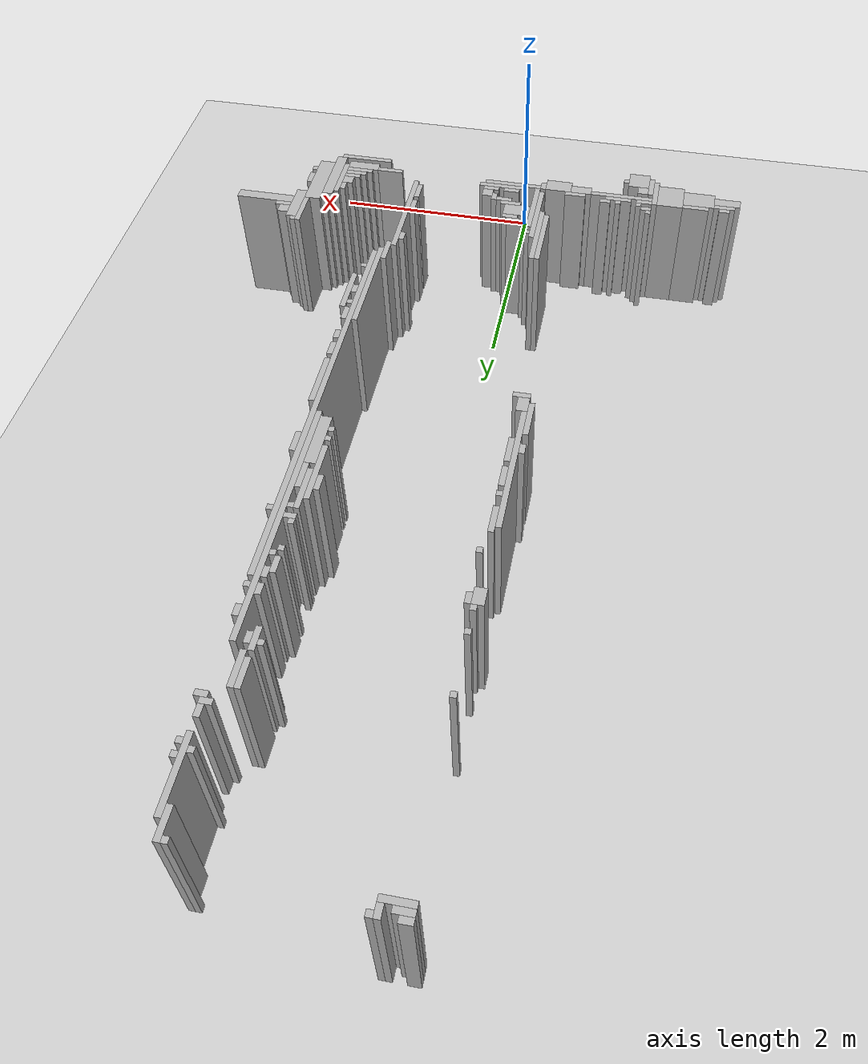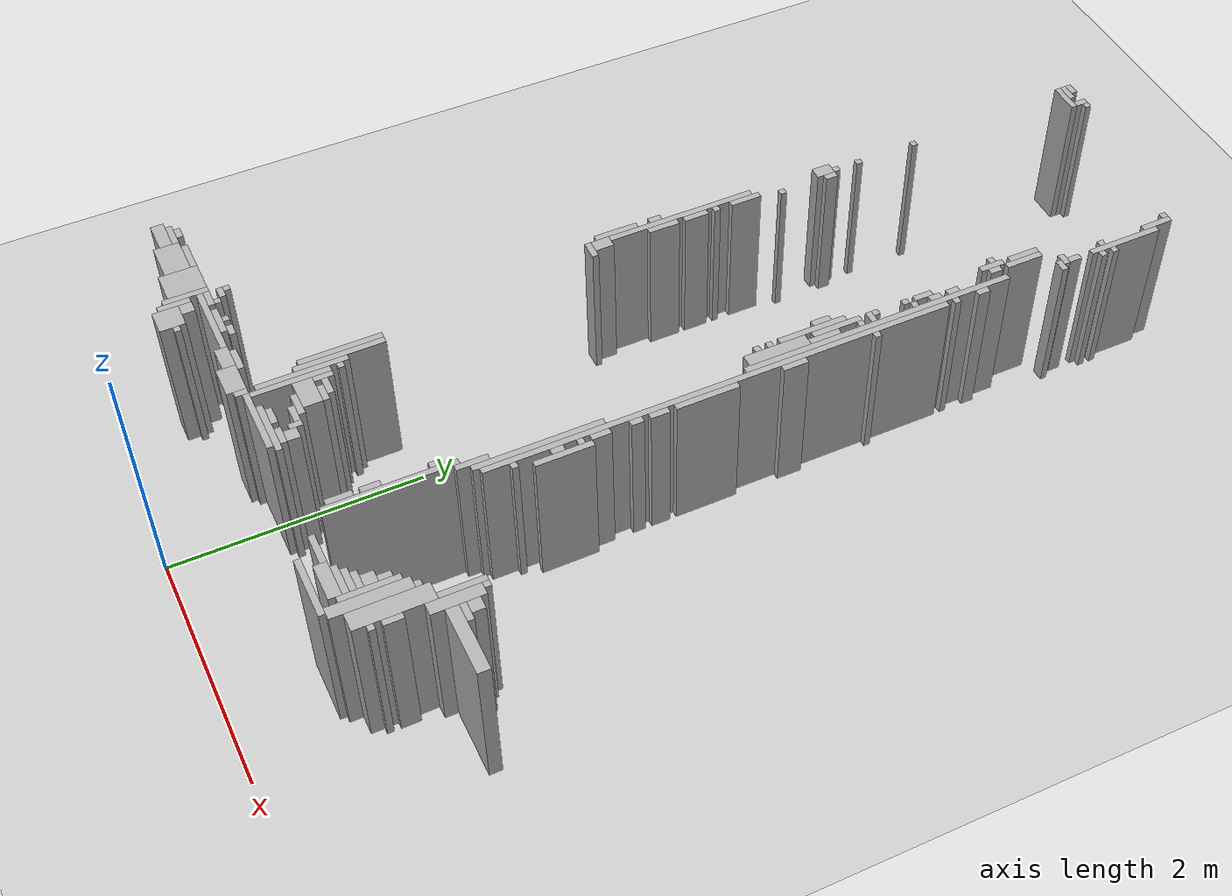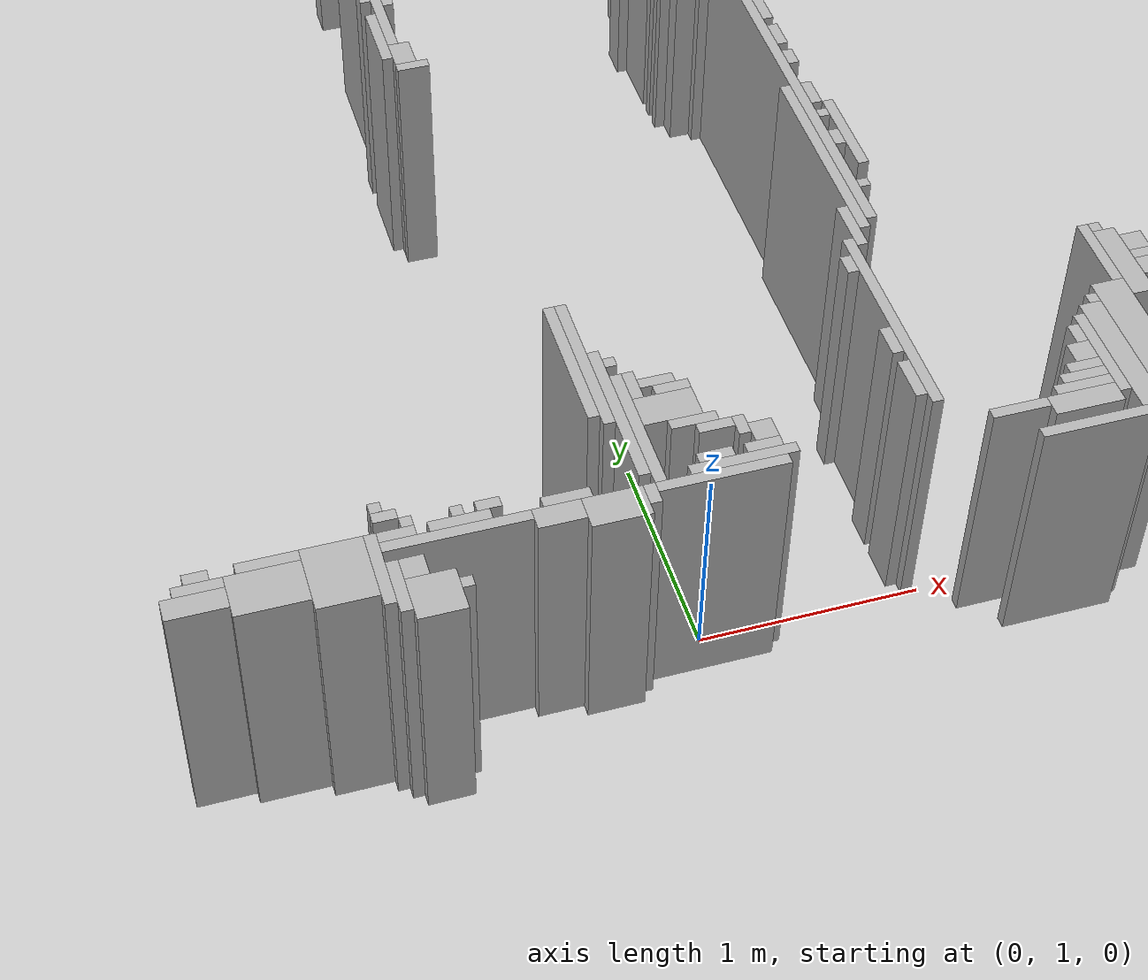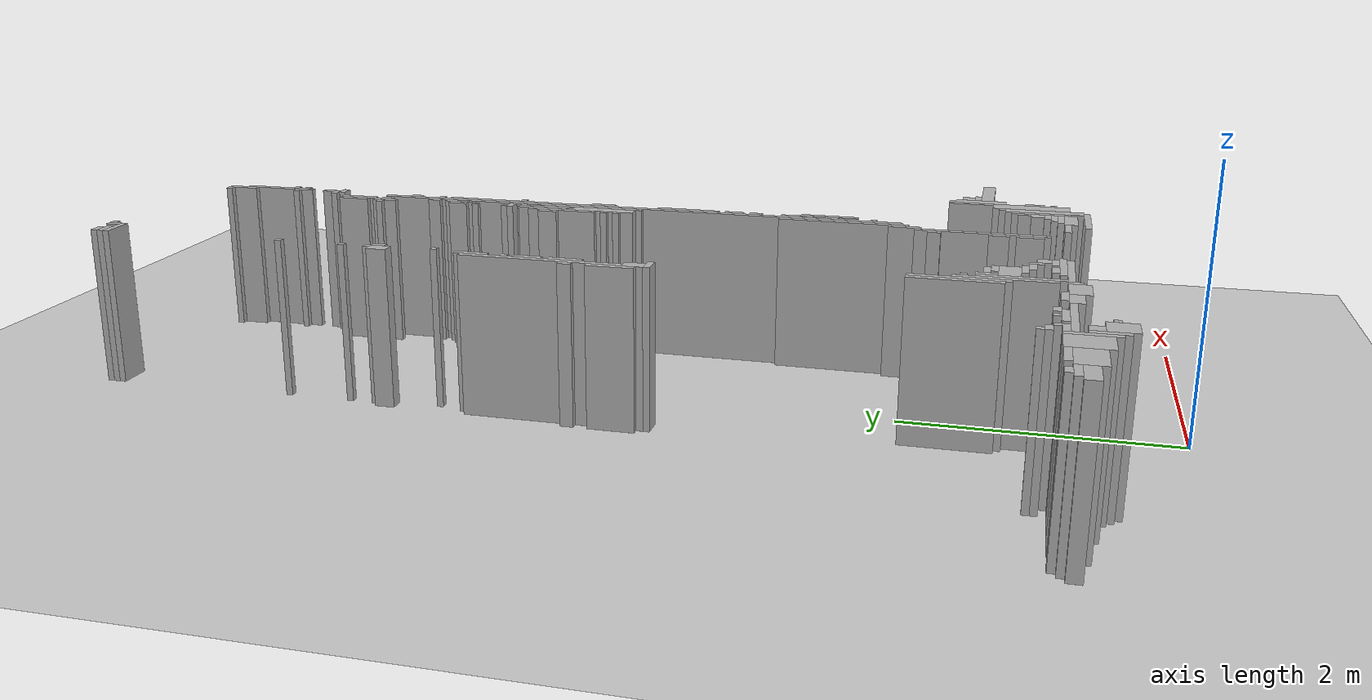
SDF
<sdf version="1.6">
 <world name="d10_floor">
  <include><uri>model://sun</uri></include>
  <include><uri>model://ground_plane</uri></include>
  <model name="d10_walls">
   <static>true</static>
   <link name="w1549">
    <pose>-1.225 0.605 0.60 0 0 0</pose>
    <collision name="c"><geometry><box><size>0.200 0.200 1.20</size></box></geometry></collision>
    <visual name="v">
     <geometry><box><size>0.200 0.200 1.20</size></box></geometry>
     <material><ambient>0.6 0.6 0.6 1</ambient><diffuse>0.7 0.7 0.7 1</diffuse></material>
    </visual>
   </link>
   <link name="w1554">
    <pose>-1.350 0.680 0.60 0 0 0</pose>
    <collision name="c"><geometry><box><size>0.050 0.250 1.20</size></box></geometry></collision>
    <visual name="v">
     <geometry><box><size>0.050 0.250 1.20</size></box></geometry>
     <material><ambient>0.6 0.6 0.6 1</ambient><diffuse>0.7 0.7 0.7 1</diffuse></material>
    </visual>
   </link>
   <link name="w1561">
    <pose>-1.400 0.780 0.60 0 0 0</pose>
    <collision name="c"><geometry><box><size>0.050 0.350 1.20</size></box></geometry></collision>
    <visual name="v">
     <geometry><box><size>0.050 0.350 1.20</size></box></geometry>
     <material><ambient>0.6 0.6 0.6 1</ambient><diffuse>0.7 0.7 0.7 1</diffuse></material>
    </visual>
   </link>
   <link name="w1562">
    <pose>-1.100 0.630 0.60 0 0 0</pose>
    <collision name="c"><geometry><box><size>0.050 0.050 1.20</size></box></geometry></collision>
    <visual name="v">
     <geometry><box><size>0.050 0.050 1.20</size></box></geometry>
     <material><ambient>0.6 0.6 0.6 1</ambient><diffuse>0.7 0.7 0.7 1</diffuse></material>
    </visual>
   </link>
   <link name="w1574">
    <pose>-1.550 0.805 0.60 0 0 0</pose>
    <collision name="c"><geometry><box><size>0.250 0.300 1.20</size></box></geometry></collision>
    <visual name="v">
     <geometry><box><size>0.250 0.300 1.20</size></box></geometry>
     <material><ambient>0.6 0.6 0.6 1</ambient><diffuse>0.7 0.7 0.7 1</diffuse></material>
    </visual>
   </link>
   <link name="w1580">
    <pose>-1.825 0.805 0.60 0 0 0</pose>
    <collision name="c"><geometry><box><size>0.300 0.200 1.20</size></box></geometry></collision>
    <visual name="v">
     <geometry><box><size>0.300 0.200 1.20</size></box></geometry>
     <material><ambient>0.6 0.6 0.6 1</ambient><diffuse>0.7 0.7 0.7 1</diffuse></material>
    </visual>
   </link>
   <link name="w1581">
    <pose>-1.275 0.755 0.60 0 0 0</pose>
    <collision name="c"><geometry><box><size>0.100 0.100 1.20</size></box></geometry></collision>
    <visual name="v">
     <geometry><box><size>0.100 0.100 1.20</size></box></geometry>
     <material><ambient>0.6 0.6 0.6 1</ambient><diffuse>0.7 0.7 0.7 1</diffuse></material>
    </visual>
   </link>
   <link name="w1582">
    <pose>1.525 0.730 0.60 0 0 0</pose>
    <collision name="c"><geometry><box><size>0.500 0.050 1.20</size></box></geometry></collision>
    <visual name="v">
     <geometry><box><size>0.500 0.050 1.20</size></box></geometry>
     <material><ambient>0.6 0.6 0.6 1</ambient><diffuse>0.7 0.7 0.7 1</diffuse></material>
    </visual>
   </link>
   <link name="w1585">
    <pose>-2.100 0.805 0.60 0 0 0</pose>
    <collision name="c"><geometry><box><size>0.250 0.100 1.20</size></box></geometry></collision>
    <visual name="v">
     <geometry><box><size>0.250 0.100 1.20</size></box></geometry>
     <material><ambient>0.6 0.6 0.6 1</ambient><diffuse>0.7 0.7 0.7 1</diffuse></material>
    </visual>
   </link>
   <link name="w1586">
    <pose>-0.450 0.830 0.60 0 0 0</pose>
    <collision name="c"><geometry><box><size>0.250 0.150 1.20</size></box></geometry></collision>
    <visual name="v">
     <geometry><box><size>0.250 0.150 1.20</size></box></geometry>
     <material><ambient>0.6 0.6 0.6 1</ambient><diffuse>0.7 0.7 0.7 1</diffuse></material>
    </visual>
   </link>
   <link name="w1587">
    <pose>1.775 1.055 0.60 0 0 0</pose>
    <collision name="c"><geometry><box><size>0.100 0.600 1.20</size></box></geometry></collision>
    <visual name="v">
     <geometry><box><size>0.100 0.600 1.20</size></box></geometry>
     <material><ambient>0.6 0.6 0.6 1</ambient><diffuse>0.7 0.7 0.7 1</diffuse></material>
    </visual>
   </link>
   <link name="w1593">
    <pose>-0.675 0.855 0.60 0 0 0</pose>
    <collision name="c"><geometry><box><size>0.200 0.100 1.20</size></box></geometry></collision>
    <visual name="v">
     <geometry><box><size>0.200 0.100 1.20</size></box></geometry>
     <material><ambient>0.6 0.6 0.6 1</ambient><diffuse>0.7 0.7 0.7 1</diffuse></material>
    </visual>
   </link>
   <link name="w1594">
    <pose>-0.300 0.855 0.60 0 0 0</pose>
    <collision name="c"><geometry><box><size>0.050 0.100 1.20</size></box></geometry></collision>
    <visual name="v">
     <geometry><box><size>0.050 0.100 1.20</size></box></geometry>
     <material><ambient>0.6 0.6 0.6 1</ambient><diffuse>0.7 0.7 0.7 1</diffuse></material>
    </visual>
   </link>
   <link name="w1595">
    <pose>1.525 0.855 0.60 0 0 0</pose>
    <collision name="c"><geometry><box><size>0.300 0.100 1.20</size></box></geometry></collision>
    <visual name="v">
     <geometry><box><size>0.300 0.100 1.20</size></box></geometry>
     <material><ambient>0.6 0.6 0.6 1</ambient><diffuse>0.7 0.7 0.7 1</diffuse></material>
    </visual>
   </link>
   <link name="w1600">
    <pose>-2.075 0.880 0.60 0 0 0</pose>
    <collision name="c"><geometry><box><size>0.200 0.050 1.20</size></box></geometry></collision>
    <visual name="v">
     <geometry><box><size>0.200 0.050 1.20</size></box></geometry>
     <material><ambient>0.6 0.6 0.6 1</ambient><diffuse>0.7 0.7 0.7 1</diffuse></material>
    </visual>
   </link>
   <link name="w1601">
    <pose>-1.075 0.880 0.60 0 0 0</pose>
    <collision name="c"><geometry><box><size>0.600 0.050 1.20</size></box></geometry></collision>
    <visual name="v">
     <geometry><box><size>0.600 0.050 1.20</size></box></geometry>
     <material><ambient>0.6 0.6 0.6 1</ambient><diffuse>0.7 0.7 0.7 1</diffuse></material>
    </visual>
   </link>
   <link name="w1602">
    <pose>0.000 0.880 0.60 0 0 0</pose>
    <collision name="c"><geometry><box><size>0.550 0.050 1.20</size></box></geometry></collision>
    <visual name="v">
     <geometry><box><size>0.550 0.050 1.20</size></box></geometry>
     <material><ambient>0.6 0.6 0.6 1</ambient><diffuse>0.7 0.7 0.7 1</diffuse></material>
    </visual>
   </link>
   <link name="w1603">
    <pose>1.250 0.880 0.60 0 0 0</pose>
    <collision name="c"><geometry><box><size>0.250 0.050 1.20</size></box></geometry></collision>
    <visual name="v">
     <geometry><box><size>0.250 0.050 1.20</size></box></geometry>
     <material><ambient>0.6 0.6 0.6 1</ambient><diffuse>0.7 0.7 0.7 1</diffuse></material>
    </visual>
   </link>
   <link name="w1604">
    <pose>1.700 1.080 0.60 0 0 0</pose>
    <collision name="c"><geometry><box><size>0.050 0.450 1.20</size></box></geometry></collision>
    <visual name="v">
     <geometry><box><size>0.050 0.450 1.20</size></box></geometry>
     <material><ambient>0.6 0.6 0.6 1</ambient><diffuse>0.7 0.7 0.7 1</diffuse></material>
    </visual>
   </link>
   <link name="w1605">
    <pose>1.900 1.155 0.60 0 0 0</pose>
    <collision name="c"><geometry><box><size>0.150 0.600 1.20</size></box></geometry></collision>
    <visual name="v">
     <geometry><box><size>0.150 0.600 1.20</size></box></geometry>
     <material><ambient>0.6 0.6 0.6 1</ambient><diffuse>0.7 0.7 0.7 1</diffuse></material>
    </visual>
   </link>
   <link name="w1610">
    <pose>-2.075 0.930 0.60 0 0 0</pose>
    <collision name="c"><geometry><box><size>0.100 0.050 1.20</size></box></geometry></collision>
    <visual name="v">
     <geometry><box><size>0.100 0.050 1.20</size></box></geometry>
     <material><ambient>0.6 0.6 0.6 1</ambient><diffuse>0.7 0.7 0.7 1</diffuse></material>
    </visual>
   </link>
   <link name="w1611">
    <pose>-1.800 0.930 0.60 0 0 0</pose>
    <collision name="c"><geometry><box><size>0.250 0.050 1.20</size></box></geometry></collision>
    <visual name="v">
     <geometry><box><size>0.250 0.050 1.20</size></box></geometry>
     <material><ambient>0.6 0.6 0.6 1</ambient><diffuse>0.7 0.7 0.7 1</diffuse></material>
    </visual>
   </link>
   <link name="w1612">
    <pose>-1.300 0.930 0.60 0 0 0</pose>
    <collision name="c"><geometry><box><size>0.150 0.050 1.20</size></box></geometry></collision>
    <visual name="v">
     <geometry><box><size>0.150 0.050 1.20</size></box></geometry>
     <material><ambient>0.6 0.6 0.6 1</ambient><diffuse>0.7 0.7 0.7 1</diffuse></material>
    </visual>
   </link>
   <link name="w1613">
    <pose>-1.050 0.930 0.60 0 0 0</pose>
    <collision name="c"><geometry><box><size>0.250 0.050 1.20</size></box></geometry></collision>
    <visual name="v">
     <geometry><box><size>0.250 0.050 1.20</size></box></geometry>
     <material><ambient>0.6 0.6 0.6 1</ambient><diffuse>0.7 0.7 0.7 1</diffuse></material>
    </visual>
   </link>
   <link name="w1614">
    <pose>-0.625 0.930 0.60 0 0 0</pose>
    <collision name="c"><geometry><box><size>0.200 0.050 1.20</size></box></geometry></collision>
    <visual name="v">
     <geometry><box><size>0.200 0.050 1.20</size></box></geometry>
     <material><ambient>0.6 0.6 0.6 1</ambient><diffuse>0.7 0.7 0.7 1</diffuse></material>
    </visual>
   </link>
   <link name="w1615">
    <pose>-0.250 1.205 0.60 0 0 0</pose>
    <collision name="c"><geometry><box><size>0.050 0.600 1.20</size></box></geometry></collision>
    <visual name="v">
     <geometry><box><size>0.050 0.600 1.20</size></box></geometry>
     <material><ambient>0.6 0.6 0.6 1</ambient><diffuse>0.7 0.7 0.7 1</diffuse></material>
    </visual>
   </link>
   <link name="w1616">
    <pose>0.100 0.930 0.60 0 0 0</pose>
    <collision name="c"><geometry><box><size>0.450 0.050 1.20</size></box></geometry></collision>
    <visual name="v">
     <geometry><box><size>0.450 0.050 1.20</size></box></geometry>
     <material><ambient>0.6 0.6 0.6 1</ambient><diffuse>0.7 0.7 0.7 1</diffuse></material>
    </visual>
   </link>
   <link name="w1617">
    <pose>1.550 0.930 0.60 0 0 0</pose>
    <collision name="c"><geometry><box><size>0.250 0.050 1.20</size></box></geometry></collision>
    <visual name="v">
     <geometry><box><size>0.250 0.050 1.20</size></box></geometry>
     <material><ambient>0.6 0.6 0.6 1</ambient><diffuse>0.7 0.7 0.7 1</diffuse></material>
    </visual>
   </link>
   <link name="w1622">
    <pose>-1.250 0.980 0.60 0 0 0</pose>
    <collision name="c"><geometry><box><size>0.050 0.050 1.20</size></box></geometry></collision>
    <visual name="v">
     <geometry><box><size>0.050 0.050 1.20</size></box></geometry>
     <material><ambient>0.6 0.6 0.6 1</ambient><diffuse>0.7 0.7 0.7 1</diffuse></material>
    </visual>
   </link>
   <link name="w1623">
    <pose>-1.050 0.980 0.60 0 0 0</pose>
    <collision name="c"><geometry><box><size>0.050 0.050 1.20</size></box></geometry></collision>
    <visual name="v">
     <geometry><box><size>0.050 0.050 1.20</size></box></geometry>
     <material><ambient>0.6 0.6 0.6 1</ambient><diffuse>0.7 0.7 0.7 1</diffuse></material>
    </visual>
   </link>
   <link name="w1624">
    <pose>-0.925 0.980 0.60 0 0 0</pose>
    <collision name="c"><geometry><box><size>0.100 0.050 1.20</size></box></geometry></collision>
    <visual name="v">
     <geometry><box><size>0.100 0.050 1.20</size></box></geometry>
     <material><ambient>0.6 0.6 0.6 1</ambient><diffuse>0.7 0.7 0.7 1</diffuse></material>
    </visual>
   </link>
   <link name="w1625">
    <pose>-0.300 1.305 0.60 0 0 0</pose>
    <collision name="c"><geometry><box><size>0.050 0.700 1.20</size></box></geometry></collision>
    <visual name="v">
     <geometry><box><size>0.050 0.700 1.20</size></box></geometry>
     <material><ambient>0.6 0.6 0.6 1</ambient><diffuse>0.7 0.7 0.7 1</diffuse></material>
    </visual>
   </link>
   <link name="w1626">
    <pose>0.000 0.980 0.60 0 0 0</pose>
    <collision name="c"><geometry><box><size>0.150 0.050 1.20</size></box></geometry></collision>
    <visual name="v">
     <geometry><box><size>0.150 0.050 1.20</size></box></geometry>
     <material><ambient>0.6 0.6 0.6 1</ambient><diffuse>0.7 0.7 0.7 1</diffuse></material>
    </visual>
   </link>
   <link name="w1627">
    <pose>0.200 0.980 0.60 0 0 0</pose>
    <collision name="c"><geometry><box><size>0.150 0.050 1.20</size></box></geometry></collision>
    <visual name="v">
     <geometry><box><size>0.150 0.050 1.20</size></box></geometry>
     <material><ambient>0.6 0.6 0.6 1</ambient><diffuse>0.7 0.7 0.7 1</diffuse></material>
    </visual>
   </link>
   <link name="w1628">
    <pose>1.575 0.980 0.60 0 0 0</pose>
    <collision name="c"><geometry><box><size>0.200 0.050 1.20</size></box></geometry></collision>
    <visual name="v">
     <geometry><box><size>0.200 0.050 1.20</size></box></geometry>
     <material><ambient>0.6 0.6 0.6 1</ambient><diffuse>0.7 0.7 0.7 1</diffuse></material>
    </visual>
   </link>
   <link name="w1629">
    <pose>2.000 0.980 0.60 0 0 0</pose>
    <collision name="c"><geometry><box><size>0.050 0.050 1.20</size></box></geometry></collision>
    <visual name="v">
     <geometry><box><size>0.050 0.050 1.20</size></box></geometry>
     <material><ambient>0.6 0.6 0.6 1</ambient><diffuse>0.7 0.7 0.7 1</diffuse></material>
    </visual>
   </link>
   <link name="w1636">
    <pose>-1.325 1.030 0.60 0 0 0</pose>
    <collision name="c"><geometry><box><size>0.100 0.050 1.20</size></box></geometry></collision>
    <visual name="v">
     <geometry><box><size>0.100 0.050 1.20</size></box></geometry>
     <material><ambient>0.6 0.6 0.6 1</ambient><diffuse>0.7 0.7 0.7 1</diffuse></material>
    </visual>
   </link>
   <link name="w1637">
    <pose>0.225 1.055 0.60 0 0 0</pose>
    <collision name="c"><geometry><box><size>0.100 0.100 1.20</size></box></geometry></collision>
    <visual name="v">
     <geometry><box><size>0.100 0.100 1.20</size></box></geometry>
     <material><ambient>0.6 0.6 0.6 1</ambient><diffuse>0.7 0.7 0.7 1</diffuse></material>
    </visual>
   </link>
   <link name="w1638">
    <pose>0.950 1.505 0.60 0 0 0</pose>
    <collision name="c"><geometry><box><size>0.050 1.000 1.20</size></box></geometry></collision>
    <visual name="v">
     <geometry><box><size>0.050 1.000 1.20</size></box></geometry>
     <material><ambient>0.6 0.6 0.6 1</ambient><diffuse>0.7 0.7 0.7 1</diffuse></material>
    </visual>
   </link>
   <link name="w1639">
    <pose>1.600 1.030 0.60 0 0 0</pose>
    <collision name="c"><geometry><box><size>0.150 0.050 1.20</size></box></geometry></collision>
    <visual name="v">
     <geometry><box><size>0.150 0.050 1.20</size></box></geometry>
     <material><ambient>0.6 0.6 0.6 1</ambient><diffuse>0.7 0.7 0.7 1</diffuse></material>
    </visual>
   </link>
   <link name="w1647">
    <pose>-1.350 1.080 0.60 0 0 0</pose>
    <collision name="c"><geometry><box><size>0.050 0.050 1.20</size></box></geometry></collision>
    <visual name="v">
     <geometry><box><size>0.050 0.050 1.20</size></box></geometry>
     <material><ambient>0.6 0.6 0.6 1</ambient><diffuse>0.7 0.7 0.7 1</diffuse></material>
    </visual>
   </link>
   <link name="w1648">
    <pose>0.150 1.105 0.60 0 0 0</pose>
    <collision name="c"><geometry><box><size>0.050 0.100 1.20</size></box></geometry></collision>
    <visual name="v">
     <geometry><box><size>0.050 0.100 1.20</size></box></geometry>
     <material><ambient>0.6 0.6 0.6 1</ambient><diffuse>0.7 0.7 0.7 1</diffuse></material>
    </visual>
   </link>
   <link name="w1649">
    <pose>0.900 1.155 0.60 0 0 0</pose>
    <collision name="c"><geometry><box><size>0.050 0.200 1.20</size></box></geometry></collision>
    <visual name="v">
     <geometry><box><size>0.050 0.200 1.20</size></box></geometry>
     <material><ambient>0.6 0.6 0.6 1</ambient><diffuse>0.7 0.7 0.7 1</diffuse></material>
    </visual>
   </link>
   <link name="w1650">
    <pose>1.625 1.105 0.60 0 0 0</pose>
    <collision name="c"><geometry><box><size>0.100 0.100 1.20</size></box></geometry></collision>
    <visual name="v">
     <geometry><box><size>0.100 0.100 1.20</size></box></geometry>
     <material><ambient>0.6 0.6 0.6 1</ambient><diffuse>0.7 0.7 0.7 1</diffuse></material>
    </visual>
   </link>
   <link name="w1651">
    <pose>2.000 1.130 0.60 0 0 0</pose>
    <collision name="c"><geometry><box><size>0.050 0.150 1.20</size></box></geometry></collision>
    <visual name="v">
     <geometry><box><size>0.050 0.150 1.20</size></box></geometry>
     <material><ambient>0.6 0.6 0.6 1</ambient><diffuse>0.7 0.7 0.7 1</diffuse></material>
    </visual>
   </link>
   <link name="w1659">
    <pose>0.050 1.130 0.60 0 0 0</pose>
    <collision name="c"><geometry><box><size>0.150 0.050 1.20</size></box></geometry></collision>
    <visual name="v">
     <geometry><box><size>0.150 0.050 1.20</size></box></geometry>
     <material><ambient>0.6 0.6 0.6 1</ambient><diffuse>0.7 0.7 0.7 1</diffuse></material>
    </visual>
   </link>
   <link name="w1669">
    <pose>-0.025 1.180 0.60 0 0 0</pose>
    <collision name="c"><geometry><box><size>0.200 0.050 1.20</size></box></geometry></collision>
    <visual name="v">
     <geometry><box><size>0.200 0.050 1.20</size></box></geometry>
     <material><ambient>0.6 0.6 0.6 1</ambient><diffuse>0.7 0.7 0.7 1</diffuse></material>
    </visual>
   </link>
   <link name="w1670">
    <pose>1.650 1.205 0.60 0 0 0</pose>
    <collision name="c"><geometry><box><size>0.050 0.100 1.20</size></box></geometry></collision>
    <visual name="v">
     <geometry><box><size>0.050 0.100 1.20</size></box></geometry>
     <material><ambient>0.6 0.6 0.6 1</ambient><diffuse>0.7 0.7 0.7 1</diffuse></material>
    </visual>
   </link>
   <link name="w1683">
    <pose>-0.100 1.280 0.60 0 0 0</pose>
    <collision name="c"><geometry><box><size>0.250 0.150 1.20</size></box></geometry></collision>
    <visual name="v">
     <geometry><box><size>0.250 0.150 1.20</size></box></geometry>
     <material><ambient>0.6 0.6 0.6 1</ambient><diffuse>0.7 0.7 0.7 1</diffuse></material>
    </visual>
   </link>
   <link name="w1693">
    <pose>-0.350 1.605 0.60 0 0 0</pose>
    <collision name="c"><geometry><box><size>0.050 0.700 1.20</size></box></geometry></collision>
    <visual name="v">
     <geometry><box><size>0.050 0.700 1.20</size></box></geometry>
     <material><ambient>0.6 0.6 0.6 1</ambient><diffuse>0.7 0.7 0.7 1</diffuse></material>
    </visual>
   </link>
   <link name="w1710">
    <pose>-0.400 1.630 0.60 0 0 0</pose>
    <collision name="c"><geometry><box><size>0.050 0.650 1.20</size></box></geometry></collision>
    <visual name="v">
     <geometry><box><size>0.050 0.650 1.20</size></box></geometry>
     <material><ambient>0.6 0.6 0.6 1</ambient><diffuse>0.7 0.7 0.7 1</diffuse></material>
    </visual>
   </link>
   <link name="w1711">
    <pose>0.900 1.380 0.60 0 0 0</pose>
    <collision name="c"><geometry><box><size>0.050 0.150 1.20</size></box></geometry></collision>
    <visual name="v">
     <geometry><box><size>0.050 0.150 1.20</size></box></geometry>
     <material><ambient>0.6 0.6 0.6 1</ambient><diffuse>0.7 0.7 0.7 1</diffuse></material>
    </visual>
   </link>
   <link name="w1723">
    <pose>-0.200 1.430 0.60 0 0 0</pose>
    <collision name="c"><geometry><box><size>0.050 0.150 1.20</size></box></geometry></collision>
    <visual name="v">
     <geometry><box><size>0.050 0.150 1.20</size></box></geometry>
     <material><ambient>0.6 0.6 0.6 1</ambient><diffuse>0.7 0.7 0.7 1</diffuse></material>
    </visual>
   </link>
   <link name="w1724">
    <pose>-0.050 1.380 0.60 0 0 0</pose>
    <collision name="c"><geometry><box><size>0.150 0.050 1.20</size></box></geometry></collision>
    <visual name="v">
     <geometry><box><size>0.150 0.050 1.20</size></box></geometry>
     <material><ambient>0.6 0.6 0.6 1</ambient><diffuse>0.7 0.7 0.7 1</diffuse></material>
    </visual>
   </link>
   <link name="w1725">
    <pose>1.800 1.380 0.60 0 0 0</pose>
    <collision name="c"><geometry><box><size>0.050 0.050 1.20</size></box></geometry></collision>
    <visual name="v">
     <geometry><box><size>0.050 0.050 1.20</size></box></geometry>
     <material><ambient>0.6 0.6 0.6 1</ambient><diffuse>0.7 0.7 0.7 1</diffuse></material>
    </visual>
   </link>
   <link name="w1726">
    <pose>2.025 1.555 0.60 0 0 0</pose>
    <collision name="c"><geometry><box><size>0.100 0.400 1.20</size></box></geometry></collision>
    <visual name="v">
     <geometry><box><size>0.100 0.400 1.20</size></box></geometry>
     <material><ambient>0.6 0.6 0.6 1</ambient><diffuse>0.7 0.7 0.7 1</diffuse></material>
    </visual>
   </link>
   <link name="w1733">
    <pose>-0.100 1.430 0.60 0 0 0</pose>
    <collision name="c"><geometry><box><size>0.150 0.050 1.20</size></box></geometry></collision>
    <visual name="v">
     <geometry><box><size>0.150 0.050 1.20</size></box></geometry>
     <material><ambient>0.6 0.6 0.6 1</ambient><diffuse>0.7 0.7 0.7 1</diffuse></material>
    </visual>
   </link>
   <link name="w1750">
    <pose>1.950 1.630 0.60 0 0 0</pose>
    <collision name="c"><geometry><box><size>0.050 0.350 1.20</size></box></geometry></collision>
    <visual name="v">
     <geometry><box><size>0.050 0.350 1.20</size></box></geometry>
     <material><ambient>0.6 0.6 0.6 1</ambient><diffuse>0.7 0.7 0.7 1</diffuse></material>
    </visual>
   </link>
   <link name="w1751">
    <pose>2.350 1.505 0.60 0 0 0</pose>
    <collision name="c"><geometry><box><size>0.550 0.100 1.20</size></box></geometry></collision>
    <visual name="v">
     <geometry><box><size>0.550 0.100 1.20</size></box></geometry>
     <material><ambient>0.6 0.6 0.6 1</ambient><diffuse>0.7 0.7 0.7 1</diffuse></material>
    </visual>
   </link>
   <link name="w1787">
    <pose>-0.250 1.580 0.60 0 0 0</pose>
    <collision name="c"><geometry><box><size>0.050 0.050 1.20</size></box></geometry></collision>
    <visual name="v">
     <geometry><box><size>0.050 0.050 1.20</size></box></geometry>
     <material><ambient>0.6 0.6 0.6 1</ambient><diffuse>0.7 0.7 0.7 1</diffuse></material>
    </visual>
   </link>
   <link name="w1788">
    <pose>2.150 1.580 0.60 0 0 0</pose>
    <collision name="c"><geometry><box><size>0.150 0.050 1.20</size></box></geometry></collision>
    <visual name="v">
     <geometry><box><size>0.150 0.050 1.20</size></box></geometry>
     <material><ambient>0.6 0.6 0.6 1</ambient><diffuse>0.7 0.7 0.7 1</diffuse></material>
    </visual>
   </link>
   <link name="w1798">
    <pose>2.125 1.655 0.60 0 0 0</pose>
    <collision name="c"><geometry><box><size>0.100 0.100 1.20</size></box></geometry></collision>
    <visual name="v">
     <geometry><box><size>0.100 0.100 1.20</size></box></geometry>
     <material><ambient>0.6 0.6 0.6 1</ambient><diffuse>0.7 0.7 0.7 1</diffuse></material>
    </visual>
   </link>
   <link name="w1819">
    <pose>2.000 1.780 0.60 0 0 0</pose>
    <collision name="c"><geometry><box><size>0.050 0.050 1.20</size></box></geometry></collision>
    <visual name="v">
     <geometry><box><size>0.050 0.050 1.20</size></box></geometry>
     <material><ambient>0.6 0.6 0.6 1</ambient><diffuse>0.7 0.7 0.7 1</diffuse></material>
    </visual>
   </link>
   <link name="w1823">
    <pose>0.900 1.855 0.60 0 0 0</pose>
    <collision name="c"><geometry><box><size>0.050 0.100 1.20</size></box></geometry></collision>
    <visual name="v">
     <geometry><box><size>0.050 0.100 1.20</size></box></geometry>
     <material><ambient>0.6 0.6 0.6 1</ambient><diffuse>0.7 0.7 0.7 1</diffuse></material>
    </visual>
   </link>
   <link name="w1840">
    <pose>1.000 2.080 0.60 0 0 0</pose>
    <collision name="c"><geometry><box><size>0.050 0.250 1.20</size></box></geometry></collision>
    <visual name="v">
     <geometry><box><size>0.050 0.250 1.20</size></box></geometry>
     <material><ambient>0.6 0.6 0.6 1</ambient><diffuse>0.7 0.7 0.7 1</diffuse></material>
    </visual>
   </link>
   <link name="w1853">
    <pose>1.050 2.555 0.60 0 0 0</pose>
    <collision name="c"><geometry><box><size>0.050 1.000 1.20</size></box></geometry></collision>
    <visual name="v">
     <geometry><box><size>0.050 1.000 1.20</size></box></geometry>
     <material><ambient>0.6 0.6 0.6 1</ambient><diffuse>0.7 0.7 0.7 1</diffuse></material>
    </visual>
   </link>
   <link name="w1859">
    <pose>1.100 3.955 0.60 0 0 0</pose>
    <collision name="c"><geometry><box><size>0.050 3.700 1.20</size></box></geometry></collision>
    <visual name="v">
     <geometry><box><size>0.050 3.700 1.20</size></box></geometry>
     <material><ambient>0.6 0.6 0.6 1</ambient><diffuse>0.7 0.7 0.7 1</diffuse></material>
    </visual>
   </link>
   <link name="w1871">
    <pose>1.150 2.330 0.60 0 0 0</pose>
    <collision name="c"><geometry><box><size>0.050 0.050 1.20</size></box></geometry></collision>
    <visual name="v">
     <geometry><box><size>0.050 0.050 1.20</size></box></geometry>
     <material><ambient>0.6 0.6 0.6 1</ambient><diffuse>0.7 0.7 0.7 1</diffuse></material>
    </visual>
   </link>
   <link name="w1876">
    <pose>1.200 2.680 0.60 0 0 0</pose>
    <collision name="c"><geometry><box><size>0.050 0.450 1.20</size></box></geometry></collision>
    <visual name="v">
     <geometry><box><size>0.050 0.450 1.20</size></box></geometry>
     <material><ambient>0.6 0.6 0.6 1</ambient><diffuse>0.7 0.7 0.7 1</diffuse></material>
    </visual>
   </link>
   <link name="w1878">
    <pose>1.150 2.655 0.60 0 0 0</pose>
    <collision name="c"><geometry><box><size>0.050 0.100 1.20</size></box></geometry></collision>
    <visual name="v">
     <geometry><box><size>0.050 0.100 1.20</size></box></geometry>
     <material><ambient>0.6 0.6 0.6 1</ambient><diffuse>0.7 0.7 0.7 1</diffuse></material>
    </visual>
   </link>
   <link name="w1879">
    <pose>1.150 2.830 0.60 0 0 0</pose>
    <collision name="c"><geometry><box><size>0.050 0.050 1.20</size></box></geometry></collision>
    <visual name="v">
     <geometry><box><size>0.050 0.050 1.20</size></box></geometry>
     <material><ambient>0.6 0.6 0.6 1</ambient><diffuse>0.7 0.7 0.7 1</diffuse></material>
    </visual>
   </link>
   <link name="w1880">
    <pose>1.150 2.980 0.60 0 0 0</pose>
    <collision name="c"><geometry><box><size>0.050 0.150 1.20</size></box></geometry></collision>
    <visual name="v">
     <geometry><box><size>0.050 0.150 1.20</size></box></geometry>
     <material><ambient>0.6 0.6 0.6 1</ambient><diffuse>0.7 0.7 0.7 1</diffuse></material>
    </visual>
   </link>
   <link name="w1886">
    <pose>1.150 3.255 0.60 0 0 0</pose>
    <collision name="c"><geometry><box><size>0.050 0.100 1.20</size></box></geometry></collision>
    <visual name="v">
     <geometry><box><size>0.050 0.100 1.20</size></box></geometry>
     <material><ambient>0.6 0.6 0.6 1</ambient><diffuse>0.7 0.7 0.7 1</diffuse></material>
    </visual>
   </link>
   <link name="w1887">
    <pose>1.150 3.430 0.60 0 0 0</pose>
    <collision name="c"><geometry><box><size>0.050 0.150 1.20</size></box></geometry></collision>
    <visual name="v">
     <geometry><box><size>0.050 0.150 1.20</size></box></geometry>
     <material><ambient>0.6 0.6 0.6 1</ambient><diffuse>0.7 0.7 0.7 1</diffuse></material>
    </visual>
   </link>
   <link name="w1892">
    <pose>1.150 3.805 0.60 0 0 0</pose>
    <collision name="c"><geometry><box><size>0.050 0.500 1.20</size></box></geometry></collision>
    <visual name="v">
     <geometry><box><size>0.050 0.500 1.20</size></box></geometry>
     <material><ambient>0.6 0.6 0.6 1</ambient><diffuse>0.7 0.7 0.7 1</diffuse></material>
    </visual>
   </link>
   <link name="w1893">
    <pose>-0.550 3.680 0.60 0 0 0</pose>
    <collision name="c"><geometry><box><size>0.150 0.050 1.20</size></box></geometry></collision>
    <visual name="v">
     <geometry><box><size>0.150 0.050 1.20</size></box></geometry>
     <material><ambient>0.6 0.6 0.6 1</ambient><diffuse>0.7 0.7 0.7 1</diffuse></material>
    </visual>
   </link>
   <link name="w1895">
    <pose>-0.575 3.780 0.60 0 0 0</pose>
    <collision name="c"><geometry><box><size>0.100 0.150 1.20</size></box></geometry></collision>
    <visual name="v">
     <geometry><box><size>0.100 0.150 1.20</size></box></geometry>
     <material><ambient>0.6 0.6 0.6 1</ambient><diffuse>0.7 0.7 0.7 1</diffuse></material>
    </visual>
   </link>
   <link name="w1896">
    <pose>-0.650 3.930 0.60 0 0 0</pose>
    <collision name="c"><geometry><box><size>0.050 0.350 1.20</size></box></geometry></collision>
    <visual name="v">
     <geometry><box><size>0.050 0.350 1.20</size></box></geometry>
     <material><ambient>0.6 0.6 0.6 1</ambient><diffuse>0.7 0.7 0.7 1</diffuse></material>
    </visual>
   </link>
   <link name="w1897">
    <pose>-0.600 4.455 0.60 0 0 0</pose>
    <collision name="c"><geometry><box><size>0.050 1.200 1.20</size></box></geometry></collision>
    <visual name="v">
     <geometry><box><size>0.050 1.200 1.20</size></box></geometry>
     <material><ambient>0.6 0.6 0.6 1</ambient><diffuse>0.7 0.7 0.7 1</diffuse></material>
    </visual>
   </link>
   <link name="w1904">
    <pose>-0.550 4.280 0.60 0 0 0</pose>
    <collision name="c"><geometry><box><size>0.050 0.250 1.20</size></box></geometry></collision>
    <visual name="v">
     <geometry><box><size>0.050 0.250 1.20</size></box></geometry>
     <material><ambient>0.6 0.6 0.6 1</ambient><diffuse>0.7 0.7 0.7 1</diffuse></material>
    </visual>
   </link>
   <link name="w1905">
    <pose>1.050 5.255 0.60 0 0 0</pose>
    <collision name="c"><geometry><box><size>0.050 2.200 1.20</size></box></geometry></collision>
    <visual name="v">
     <geometry><box><size>0.050 2.200 1.20</size></box></geometry>
     <material><ambient>0.6 0.6 0.6 1</ambient><diffuse>0.7 0.7 0.7 1</diffuse></material>
    </visual>
   </link>
   <link name="w1906">
    <pose>-0.650 4.255 0.60 0 0 0</pose>
    <collision name="c"><geometry><box><size>0.050 0.100 1.20</size></box></geometry></collision>
    <visual name="v">
     <geometry><box><size>0.050 0.100 1.20</size></box></geometry>
     <material><ambient>0.6 0.6 0.6 1</ambient><diffuse>0.7 0.7 0.7 1</diffuse></material>
    </visual>
   </link>
   <link name="w1907">
    <pose>0.975 4.455 0.60 0 0 0</pose>
    <collision name="c"><geometry><box><size>0.100 0.500 1.20</size></box></geometry></collision>
    <visual name="v">
     <geometry><box><size>0.100 0.500 1.20</size></box></geometry>
     <material><ambient>0.6 0.6 0.6 1</ambient><diffuse>0.7 0.7 0.7 1</diffuse></material>
    </visual>
   </link>
   <link name="w1909">
    <pose>0.900 4.330 0.60 0 0 0</pose>
    <collision name="c"><geometry><box><size>0.050 0.050 1.20</size></box></geometry></collision>
    <visual name="v">
     <geometry><box><size>0.050 0.050 1.20</size></box></geometry>
     <material><ambient>0.6 0.6 0.6 1</ambient><diffuse>0.7 0.7 0.7 1</diffuse></material>
    </visual>
   </link>
   <link name="w1910">
    <pose>0.900 4.430 0.60 0 0 0</pose>
    <collision name="c"><geometry><box><size>0.050 0.050 1.20</size></box></geometry></collision>
    <visual name="v">
     <geometry><box><size>0.050 0.050 1.20</size></box></geometry>
     <material><ambient>0.6 0.6 0.6 1</ambient><diffuse>0.7 0.7 0.7 1</diffuse></material>
    </visual>
   </link>
   <link name="w1911">
    <pose>1.150 4.505 0.60 0 0 0</pose>
    <collision name="c"><geometry><box><size>0.050 0.200 1.20</size></box></geometry></collision>
    <visual name="v">
     <geometry><box><size>0.050 0.200 1.20</size></box></geometry>
     <material><ambient>0.6 0.6 0.6 1</ambient><diffuse>0.7 0.7 0.7 1</diffuse></material>
    </visual>
   </link>
   <link name="w1912">
    <pose>-0.550 4.555 0.60 0 0 0</pose>
    <collision name="c"><geometry><box><size>0.050 0.200 1.20</size></box></geometry></collision>
    <visual name="v">
     <geometry><box><size>0.050 0.200 1.20</size></box></geometry>
     <material><ambient>0.6 0.6 0.6 1</ambient><diffuse>0.7 0.7 0.7 1</diffuse></material>
    </visual>
   </link>
   <link name="w1913">
    <pose>0.900 4.780 0.60 0 0 0</pose>
    <collision name="c"><geometry><box><size>0.050 0.550 1.20</size></box></geometry></collision>
    <visual name="v">
     <geometry><box><size>0.050 0.550 1.20</size></box></geometry>
     <material><ambient>0.6 0.6 0.6 1</ambient><diffuse>0.7 0.7 0.7 1</diffuse></material>
    </visual>
   </link>
   <link name="w1915">
    <pose>-0.550 4.730 0.60 0 0 0</pose>
    <collision name="c"><geometry><box><size>0.050 0.050 1.20</size></box></geometry></collision>
    <visual name="v">
     <geometry><box><size>0.050 0.050 1.20</size></box></geometry>
     <material><ambient>0.6 0.6 0.6 1</ambient><diffuse>0.7 0.7 0.7 1</diffuse></material>
    </visual>
   </link>
   <link name="w1916">
    <pose>1.000 4.830 0.60 0 0 0</pose>
    <collision name="c"><geometry><box><size>0.050 0.250 1.20</size></box></geometry></collision>
    <visual name="v">
     <geometry><box><size>0.050 0.250 1.20</size></box></geometry>
     <material><ambient>0.6 0.6 0.6 1</ambient><diffuse>0.7 0.7 0.7 1</diffuse></material>
    </visual>
   </link>
   <link name="w1917">
    <pose>0.950 4.955 0.60 0 0 0</pose>
    <collision name="c"><geometry><box><size>0.050 0.400 1.20</size></box></geometry></collision>
    <visual name="v">
     <geometry><box><size>0.050 0.400 1.20</size></box></geometry>
     <material><ambient>0.6 0.6 0.6 1</ambient><diffuse>0.7 0.7 0.7 1</diffuse></material>
    </visual>
   </link>
   <link name="w1921">
    <pose>0.850 4.880 0.60 0 0 0</pose>
    <collision name="c"><geometry><box><size>0.050 0.150 1.20</size></box></geometry></collision>
    <visual name="v">
     <geometry><box><size>0.050 0.150 1.20</size></box></geometry>
     <material><ambient>0.6 0.6 0.6 1</ambient><diffuse>0.7 0.7 0.7 1</diffuse></material>
    </visual>
   </link>
   <link name="w1923">
    <pose>-0.550 4.980 0.60 0 0 0</pose>
    <collision name="c"><geometry><box><size>0.050 0.250 1.20</size></box></geometry></collision>
    <visual name="v">
     <geometry><box><size>0.050 0.250 1.20</size></box></geometry>
     <material><ambient>0.6 0.6 0.6 1</ambient><diffuse>0.7 0.7 0.7 1</diffuse></material>
    </visual>
   </link>
   <link name="w1925">
    <pose>1.000 5.130 0.60 0 0 0</pose>
    <collision name="c"><geometry><box><size>0.050 0.050 1.20</size></box></geometry></collision>
    <visual name="v">
     <geometry><box><size>0.050 0.050 1.20</size></box></geometry>
     <material><ambient>0.6 0.6 0.6 1</ambient><diffuse>0.7 0.7 0.7 1</diffuse></material>
    </visual>
   </link>
   <link name="w1926">
    <pose>1.150 5.180 0.60 0 0 0</pose>
    <collision name="c"><geometry><box><size>0.050 0.050 1.20</size></box></geometry></collision>
    <visual name="v">
     <geometry><box><size>0.050 0.050 1.20</size></box></geometry>
     <material><ambient>0.6 0.6 0.6 1</ambient><diffuse>0.7 0.7 0.7 1</diffuse></material>
    </visual>
   </link>
   <link name="w1928">
    <pose>0.975 5.230 0.60 0 0 0</pose>
    <collision name="c"><geometry><box><size>0.100 0.050 1.20</size></box></geometry></collision>
    <visual name="v">
     <geometry><box><size>0.100 0.050 1.20</size></box></geometry>
     <material><ambient>0.6 0.6 0.6 1</ambient><diffuse>0.7 0.7 0.7 1</diffuse></material>
    </visual>
   </link>
   <link name="w1929">
    <pose>-0.500 5.280 0.60 0 0 0</pose>
    <collision name="c"><geometry><box><size>0.050 0.050 1.20</size></box></geometry></collision>
    <visual name="v">
     <geometry><box><size>0.050 0.050 1.20</size></box></geometry>
     <material><ambient>0.6 0.6 0.6 1</ambient><diffuse>0.7 0.7 0.7 1</diffuse></material>
    </visual>
   </link>
   <link name="w1930">
    <pose>0.950 5.280 0.60 0 0 0</pose>
    <collision name="c"><geometry><box><size>0.050 0.050 1.20</size></box></geometry></collision>
    <visual name="v">
     <geometry><box><size>0.050 0.050 1.20</size></box></geometry>
     <material><ambient>0.6 0.6 0.6 1</ambient><diffuse>0.7 0.7 0.7 1</diffuse></material>
    </visual>
   </link>
   <link name="w1931">
    <pose>0.950 5.530 0.60 0 0 0</pose>
    <collision name="c"><geometry><box><size>0.050 0.050 1.20</size></box></geometry></collision>
    <visual name="v">
     <geometry><box><size>0.050 0.050 1.20</size></box></geometry>
     <material><ambient>0.6 0.6 0.6 1</ambient><diffuse>0.7 0.7 0.7 1</diffuse></material>
    </visual>
   </link>
   <link name="w1932">
    <pose>1.000 5.580 0.60 0 0 0</pose>
    <collision name="c"><geometry><box><size>0.050 0.050 1.20</size></box></geometry></collision>
    <visual name="v">
     <geometry><box><size>0.050 0.050 1.20</size></box></geometry>
     <material><ambient>0.6 0.6 0.6 1</ambient><diffuse>0.7 0.7 0.7 1</diffuse></material>
    </visual>
   </link>
   <link name="w1934">
    <pose>-0.575 5.680 0.60 0 0 0</pose>
    <collision name="c"><geometry><box><size>0.100 0.150 1.20</size></box></geometry></collision>
    <visual name="v">
     <geometry><box><size>0.100 0.150 1.20</size></box></geometry>
     <material><ambient>0.6 0.6 0.6 1</ambient><diffuse>0.7 0.7 0.7 1</diffuse></material>
    </visual>
   </link>
   <link name="w1935">
    <pose>0.950 5.680 0.60 0 0 0</pose>
    <collision name="c"><geometry><box><size>0.050 0.150 1.20</size></box></geometry></collision>
    <visual name="v">
     <geometry><box><size>0.050 0.150 1.20</size></box></geometry>
     <material><ambient>0.6 0.6 0.6 1</ambient><diffuse>0.7 0.7 0.7 1</diffuse></material>
    </visual>
   </link>
   <link name="w1936">
    <pose>-0.500 5.705 0.60 0 0 0</pose>
    <collision name="c"><geometry><box><size>0.050 0.100 1.20</size></box></geometry></collision>
    <visual name="v">
     <geometry><box><size>0.050 0.100 1.20</size></box></geometry>
     <material><ambient>0.6 0.6 0.6 1</ambient><diffuse>0.7 0.7 0.7 1</diffuse></material>
    </visual>
   </link>
   <link name="w1938">
    <pose>1.000 5.755 0.60 0 0 0</pose>
    <collision name="c"><geometry><box><size>0.050 0.100 1.20</size></box></geometry></collision>
    <visual name="v">
     <geometry><box><size>0.050 0.100 1.20</size></box></geometry>
     <material><ambient>0.6 0.6 0.6 1</ambient><diffuse>0.7 0.7 0.7 1</diffuse></material>
    </visual>
   </link>
   <link name="w1940">
    <pose>-0.550 5.780 0.60 0 0 0</pose>
    <collision name="c"><geometry><box><size>0.050 0.050 1.20</size></box></geometry></collision>
    <visual name="v">
     <geometry><box><size>0.050 0.050 1.20</size></box></geometry>
     <material><ambient>0.6 0.6 0.6 1</ambient><diffuse>0.7 0.7 0.7 1</diffuse></material>
    </visual>
   </link>
   <link name="w1941">
    <pose>1.000 5.905 0.60 0 0 0</pose>
    <collision name="c"><geometry><box><size>0.050 0.100 1.20</size></box></geometry></collision>
    <visual name="v">
     <geometry><box><size>0.050 0.100 1.20</size></box></geometry>
     <material><ambient>0.6 0.6 0.6 1</ambient><diffuse>0.7 0.7 0.7 1</diffuse></material>
    </visual>
   </link>
   <link name="w1942">
    <pose>1.100 5.880 0.60 0 0 0</pose>
    <collision name="c"><geometry><box><size>0.050 0.050 1.20</size></box></geometry></collision>
    <visual name="v">
     <geometry><box><size>0.050 0.050 1.20</size></box></geometry>
     <material><ambient>0.6 0.6 0.6 1</ambient><diffuse>0.7 0.7 0.7 1</diffuse></material>
    </visual>
   </link>
   <link name="w1944">
    <pose>-0.550 5.980 0.60 0 0 0</pose>
    <collision name="c"><geometry><box><size>0.050 0.050 1.20</size></box></geometry></collision>
    <visual name="v">
     <geometry><box><size>0.050 0.050 1.20</size></box></geometry>
     <material><ambient>0.6 0.6 0.6 1</ambient><diffuse>0.7 0.7 0.7 1</diffuse></material>
    </visual>
   </link>
   <link name="w1947">
    <pose>1.100 6.105 0.60 0 0 0</pose>
    <collision name="c"><geometry><box><size>0.050 0.100 1.20</size></box></geometry></collision>
    <visual name="v">
     <geometry><box><size>0.050 0.100 1.20</size></box></geometry>
     <material><ambient>0.6 0.6 0.6 1</ambient><diffuse>0.7 0.7 0.7 1</diffuse></material>
    </visual>
   </link>
   <link name="w1949">
    <pose>0.900 6.305 0.60 0 0 0</pose>
    <collision name="c"><geometry><box><size>0.050 0.200 1.20</size></box></geometry></collision>
    <visual name="v">
     <geometry><box><size>0.050 0.200 1.20</size></box></geometry>
     <material><ambient>0.6 0.6 0.6 1</ambient><diffuse>0.7 0.7 0.7 1</diffuse></material>
    </visual>
   </link>
   <link name="w1951">
    <pose>0.950 6.305 0.60 0 0 0</pose>
    <collision name="c"><geometry><box><size>0.050 0.100 1.20</size></box></geometry></collision>
    <visual name="v">
     <geometry><box><size>0.050 0.100 1.20</size></box></geometry>
     <material><ambient>0.6 0.6 0.6 1</ambient><diffuse>0.7 0.7 0.7 1</diffuse></material>
    </visual>
   </link>
   <link name="w1953">
    <pose>0.850 6.330 0.60 0 0 0</pose>
    <collision name="c"><geometry><box><size>0.050 0.050 1.20</size></box></geometry></collision>
    <visual name="v">
     <geometry><box><size>0.050 0.050 1.20</size></box></geometry>
     <material><ambient>0.6 0.6 0.6 1</ambient><diffuse>0.7 0.7 0.7 1</diffuse></material>
    </visual>
   </link>
   <link name="w1957">
    <pose>0.950 6.555 0.60 0 0 0</pose>
    <collision name="c"><geometry><box><size>0.050 0.300 1.20</size></box></geometry></collision>
    <visual name="v">
     <geometry><box><size>0.050 0.300 1.20</size></box></geometry>
     <material><ambient>0.6 0.6 0.6 1</ambient><diffuse>0.7 0.7 0.7 1</diffuse></material>
    </visual>
   </link>
   <link name="w1958">
    <pose>-0.550 6.480 0.60 0 0 0</pose>
    <collision name="c"><geometry><box><size>0.050 0.050 1.20</size></box></geometry></collision>
    <visual name="v">
     <geometry><box><size>0.050 0.050 1.20</size></box></geometry>
     <material><ambient>0.6 0.6 0.6 1</ambient><diffuse>0.7 0.7 0.7 1</diffuse></material>
    </visual>
   </link>
   <link name="w1959">
    <pose>0.900 6.580 0.60 0 0 0</pose>
    <collision name="c"><geometry><box><size>0.050 0.250 1.20</size></box></geometry></collision>
    <visual name="v">
     <geometry><box><size>0.050 0.250 1.20</size></box></geometry>
     <material><ambient>0.6 0.6 0.6 1</ambient><diffuse>0.7 0.7 0.7 1</diffuse></material>
    </visual>
   </link>
   <link name="w1963">
    <pose>1.125 6.780 0.60 0 0 0</pose>
    <collision name="c"><geometry><box><size>0.100 0.050 1.20</size></box></geometry></collision>
    <visual name="v">
     <geometry><box><size>0.100 0.050 1.20</size></box></geometry>
     <material><ambient>0.6 0.6 0.6 1</ambient><diffuse>0.7 0.7 0.7 1</diffuse></material>
    </visual>
   </link>
   <link name="w1966">
    <pose>1.075 6.830 0.60 0 0 0</pose>
    <collision name="c"><geometry><box><size>0.100 0.050 1.20</size></box></geometry></collision>
    <visual name="v">
     <geometry><box><size>0.100 0.050 1.20</size></box></geometry>
     <material><ambient>0.6 0.6 0.6 1</ambient><diffuse>0.7 0.7 0.7 1</diffuse></material>
    </visual>
   </link>
   <link name="w1967">
    <pose>1.100 6.905 0.60 0 0 0</pose>
    <collision name="c"><geometry><box><size>0.050 0.100 1.20</size></box></geometry></collision>
    <visual name="v">
     <geometry><box><size>0.050 0.100 1.20</size></box></geometry>
     <material><ambient>0.6 0.6 0.6 1</ambient><diffuse>0.7 0.7 0.7 1</diffuse></material>
    </visual>
   </link>
   <link name="w1973">
    <pose>1.100 7.355 0.60 0 0 0</pose>
    <collision name="c"><geometry><box><size>0.050 0.600 1.20</size></box></geometry></collision>
    <visual name="v">
     <geometry><box><size>0.050 0.600 1.20</size></box></geometry>
     <material><ambient>0.6 0.6 0.6 1</ambient><diffuse>0.7 0.7 0.7 1</diffuse></material>
    </visual>
   </link>
   <link name="w1976">
    <pose>1.150 7.130 0.60 0 0 0</pose>
    <collision name="c"><geometry><box><size>0.050 0.050 1.20</size></box></geometry></collision>
    <visual name="v">
     <geometry><box><size>0.050 0.050 1.20</size></box></geometry>
     <material><ambient>0.6 0.6 0.6 1</ambient><diffuse>0.7 0.7 0.7 1</diffuse></material>
    </visual>
   </link>
   <link name="w1979">
    <pose>1.050 7.180 0.60 0 0 0</pose>
    <collision name="c"><geometry><box><size>0.050 0.050 1.20</size></box></geometry></collision>
    <visual name="v">
     <geometry><box><size>0.050 0.050 1.20</size></box></geometry>
     <material><ambient>0.6 0.6 0.6 1</ambient><diffuse>0.7 0.7 0.7 1</diffuse></material>
    </visual>
   </link>
   <link name="w1981">
    <pose>1.150 7.230 0.60 0 0 0</pose>
    <collision name="c"><geometry><box><size>0.050 0.050 1.20</size></box></geometry></collision>
    <visual name="v">
     <geometry><box><size>0.050 0.050 1.20</size></box></geometry>
     <material><ambient>0.6 0.6 0.6 1</ambient><diffuse>0.7 0.7 0.7 1</diffuse></material>
    </visual>
   </link>
   <link name="w1986">
    <pose>1.050 7.680 0.60 0 0 0</pose>
    <collision name="c"><geometry><box><size>0.050 0.250 1.20</size></box></geometry></collision>
    <visual name="v">
     <geometry><box><size>0.050 0.250 1.20</size></box></geometry>
     <material><ambient>0.6 0.6 0.6 1</ambient><diffuse>0.7 0.7 0.7 1</diffuse></material>
    </visual>
   </link>
   <link name="w1990">
    <pose>1.000 7.780 0.60 0 0 0</pose>
    <collision name="c"><geometry><box><size>0.050 0.050 1.20</size></box></geometry></collision>
    <visual name="v">
     <geometry><box><size>0.050 0.050 1.20</size></box></geometry>
     <material><ambient>0.6 0.6 0.6 1</ambient><diffuse>0.7 0.7 0.7 1</diffuse></material>
    </visual>
   </link>
   <link name="w1991">
    <pose>-0.500 7.880 0.60 0 0 0</pose>
    <collision name="c"><geometry><box><size>0.250 0.050 1.20</size></box></geometry></collision>
    <visual name="v">
     <geometry><box><size>0.250 0.050 1.20</size></box></geometry>
     <material><ambient>0.6 0.6 0.6 1</ambient><diffuse>0.7 0.7 0.7 1</diffuse></material>
    </visual>
   </link>
   <link name="w1992">
    <pose>-0.550 7.930 0.60 0 0 0</pose>
    <collision name="c"><geometry><box><size>0.150 0.050 1.20</size></box></geometry></collision>
    <visual name="v">
     <geometry><box><size>0.150 0.050 1.20</size></box></geometry>
     <material><ambient>0.6 0.6 0.6 1</ambient><diffuse>0.7 0.7 0.7 1</diffuse></material>
    </visual>
   </link>
   <link name="w1993">
    <pose>-0.400 7.955 0.60 0 0 0</pose>
    <collision name="c"><geometry><box><size>0.050 0.100 1.20</size></box></geometry></collision>
    <visual name="v">
     <geometry><box><size>0.050 0.100 1.20</size></box></geometry>
     <material><ambient>0.6 0.6 0.6 1</ambient><diffuse>0.7 0.7 0.7 1</diffuse></material>
    </visual>
   </link>
   <link name="w1995">
    <pose>-0.575 7.980 0.60 0 0 0</pose>
    <collision name="c"><geometry><box><size>0.100 0.050 1.20</size></box></geometry></collision>
    <visual name="v">
     <geometry><box><size>0.100 0.050 1.20</size></box></geometry>
     <material><ambient>0.6 0.6 0.6 1</ambient><diffuse>0.7 0.7 0.7 1</diffuse></material>
    </visual>
   </link>
   <link name="w1996">
    <pose>-0.350 7.980 0.60 0 0 0</pose>
    <collision name="c"><geometry><box><size>0.050 0.050 1.20</size></box></geometry></collision>
    <visual name="v">
     <geometry><box><size>0.050 0.050 1.20</size></box></geometry>
     <material><ambient>0.6 0.6 0.6 1</ambient><diffuse>0.7 0.7 0.7 1</diffuse></material>
    </visual>
   </link>
  </model>
 </world>
</sdf>
